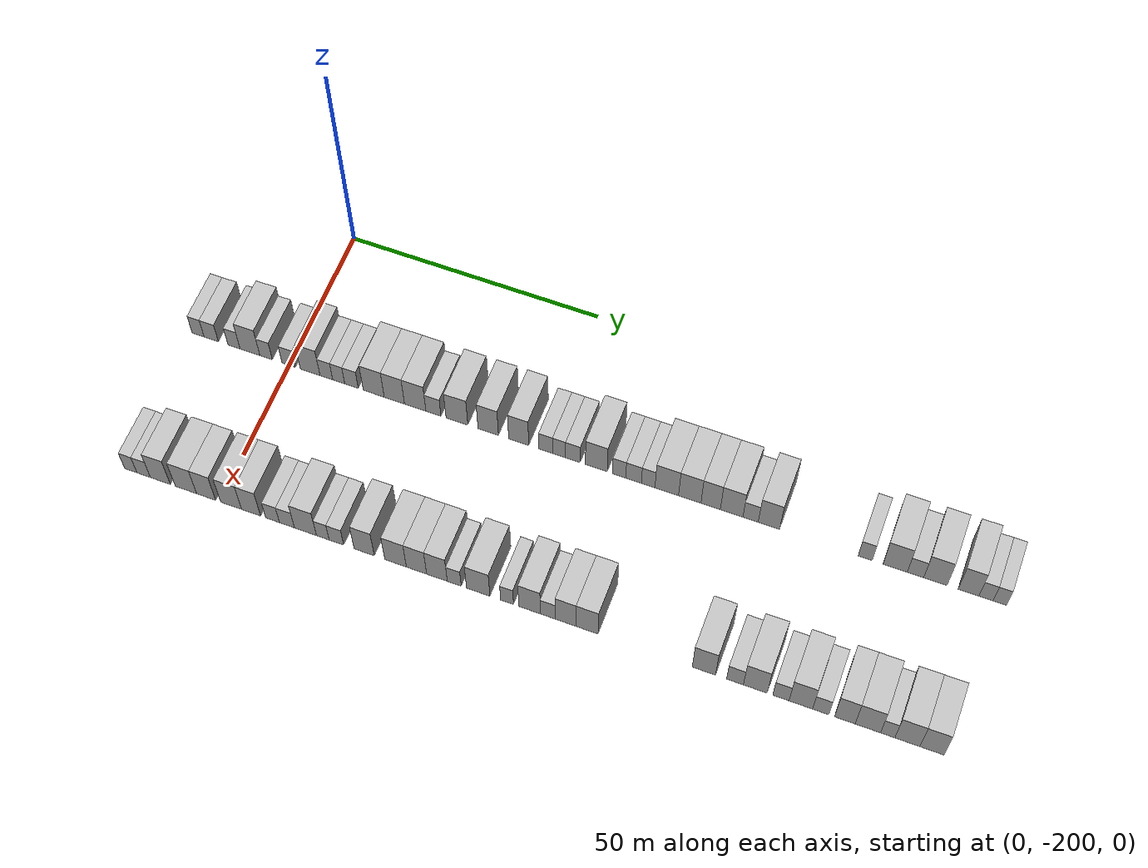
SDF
<sdf version="1.6">
 <world name="default">
  <model name="building_1">
   <static>1</static>
   <pose>25.0000 -218.7764 0 0.000000 0.000000 0.000000</pose>
   <link name="link">
    <pose>0 0 3.00 0 0 0</pose>
    <collision name="collision"><geometry><box><size>10.0000 2.4473 6.0000</size></box></geometry></collision>
    <visual name="visual">
     <cast_shadows>0</cast_shadows>
     <geometry><box><size>10.0000 2.4473 6.0000</size></box></geometry>
     <material>
      <script>
       <uri>model://HANNAS_wall/materials/scripts</uri>
       <uri>model://HANNAS_wall/materials/textures</uri>
       <name>vrc/HANNAS_wall</name>
      </script>
     </material>
    </visual>
   </link>
  </model>
  <model name="building_2">
   <static>1</static>
   <pose>25.0000 -216.0781 0 0.000000 0.000000 0.000000</pose>
   <link name="link">
    <pose>0 0 3.00 0 0 0</pose>
    <collision name="collision"><geometry><box><size>10.0000 2.9493 6.0000</size></box></geometry></collision>
    <visual name="visual">
     <cast_shadows>0</cast_shadows>
     <geometry><box><size>10.0000 2.9493 6.0000</size></box></geometry>
     <material>
      <script>
       <uri>model://HANNAS_wall/materials/scripts</uri>
       <uri>model://HANNAS_wall/materials/textures</uri>
       <name>vrc/HANNAS_wall</name>
      </script>
     </material>
    </visual>
   </link>
  </model>
  <model name="building_3">
   <static>1</static>
   <pose>25.0000 -211.3653 0 0.000000 0.000000 0.000000</pose>
   <link name="link">
    <pose>0 0 3.00 0 0 0</pose>
    <collision name="collision"><geometry><box><size>10.0000 2.4762 6.0000</size></box></geometry></collision>
    <visual name="visual">
     <cast_shadows>0</cast_shadows>
     <geometry><box><size>10.0000 2.4762 6.0000</size></box></geometry>
     <material>
      <script>
       <uri>model://HANNAS_wall/materials/scripts</uri>
       <uri>model://HANNAS_wall/materials/textures</uri>
       <name>vrc/HANNAS_wall</name>
      </script>
     </material>
    </visual>
   </link>
  </model>
  <model name="building_4">
   <static>1</static>
   <pose>25.0000 -208.0917 0 0.000000 0.000000 0.000000</pose>
   <link name="link">
    <pose>0 0 4.50 0 0 0</pose>
    <collision name="collision"><geometry><box><size>10.0000 4.0710 9.0000</size></box></geometry></collision>
    <visual name="visual">
     <cast_shadows>0</cast_shadows>
     <geometry><box><size>10.0000 4.0710 9.0000</size></box></geometry>
     <material>
      <script>
       <uri>model://HANNAS_wall/materials/scripts</uri>
       <uri>model://HANNAS_wall/materials/textures</uri>
       <name>vrc/HANNAS_wall</name>
      </script>
     </material>
    </visual>
   </link>
  </model>
  <model name="building_5">
   <static>1</static>
   <pose>25.0000 -204.7895 0 0.000000 0.000000 0.000000</pose>
   <link name="link">
    <pose>0 0 3.00 0 0 0</pose>
    <collision name="collision"><geometry><box><size>10.0000 2.5335 6.0000</size></box></geometry></collision>
    <visual name="visual">
     <cast_shadows>0</cast_shadows>
     <geometry><box><size>10.0000 2.5335 6.0000</size></box></geometry>
     <material>
      <script>
       <uri>model://HANNAS_wall/materials/scripts</uri>
       <uri>model://HANNAS_wall/materials/textures</uri>
       <name>vrc/HANNAS_wall</name>
      </script>
     </material>
    </visual>
   </link>
  </model>
  <model name="building_6">
   <static>1</static>
   <pose>25.0000 -200.1600 0 0.000000 0.000000 0.000000</pose>
   <link name="link">
    <pose>0 0 3.00 0 0 0</pose>
    <collision name="collision"><geometry><box><size>10.0000 2.7254 6.0000</size></box></geometry></collision>
    <visual name="visual">
     <cast_shadows>0</cast_shadows>
     <geometry><box><size>10.0000 2.7254 6.0000</size></box></geometry>
     <material>
      <script>
       <uri>model://HANNAS_wall/materials/scripts</uri>
       <uri>model://HANNAS_wall/materials/textures</uri>
       <name>vrc/HANNAS_wall</name>
      </script>
     </material>
    </visual>
   </link>
  </model>
  <model name="building_7">
   <static>1</static>
   <pose>25.0000 -195.8022 0 0.000000 0.000000 0.000000</pose>
   <link name="link">
    <pose>0 0 4.50 0 0 0</pose>
    <collision name="collision"><geometry><box><size>10.0000 3.9903 9.0000</size></box></geometry></collision>
    <visual name="visual">
     <cast_shadows>0</cast_shadows>
     <geometry><box><size>10.0000 3.9903 9.0000</size></box></geometry>
     <material>
      <script>
       <uri>model://HANNAS_wall/materials/scripts</uri>
       <uri>model://HANNAS_wall/materials/textures</uri>
       <name>vrc/HANNAS_wall</name>
      </script>
     </material>
    </visual>
   </link>
  </model>
  <model name="building_8">
   <static>1</static>
   <pose>25.0000 -192.5255 0 0.000000 0.000000 0.000000</pose>
   <link name="link">
    <pose>0 0 3.00 0 0 0</pose>
    <collision name="collision"><geometry><box><size>10.0000 2.5631 6.0000</size></box></geometry></collision>
    <visual name="visual">
     <cast_shadows>0</cast_shadows>
     <geometry><box><size>10.0000 2.5631 6.0000</size></box></geometry>
     <material>
      <script>
       <uri>model://HANNAS_wall/materials/scripts</uri>
       <uri>model://HANNAS_wall/materials/textures</uri>
       <name>vrc/HANNAS_wall</name>
      </script>
     </material>
    </visual>
   </link>
  </model>
  <model name="building_9">
   <static>1</static>
   <pose>25.0000 -190.0301 0 0.000000 0.000000 0.000000</pose>
   <link name="link">
    <pose>0 0 3.00 0 0 0</pose>
    <collision name="collision"><geometry><box><size>10.0000 2.4276 6.0000</size></box></geometry></collision>
    <visual name="visual">
     <cast_shadows>0</cast_shadows>
     <geometry><box><size>10.0000 2.4276 6.0000</size></box></geometry>
     <material>
      <script>
       <uri>model://HANNAS_wall/materials/scripts</uri>
       <uri>model://HANNAS_wall/materials/textures</uri>
       <name>vrc/HANNAS_wall</name>
      </script>
     </material>
    </visual>
   </link>
  </model>
  <model name="building_10">
   <static>1</static>
   <pose>25.0000 -187.4523 0 0.000000 0.000000 0.000000</pose>
   <link name="link">
    <pose>0 0 3.00 0 0 0</pose>
    <collision name="collision"><geometry><box><size>10.0000 2.7280 6.0000</size></box></geometry></collision>
    <visual name="visual">
     <cast_shadows>0</cast_shadows>
     <geometry><box><size>10.0000 2.7280 6.0000</size></box></geometry>
     <material>
      <script>
       <uri>model://HANNAS_wall/materials/scripts</uri>
       <uri>model://HANNAS_wall/materials/textures</uri>
       <name>vrc/HANNAS_wall</name>
      </script>
     </material>
    </visual>
   </link>
  </model>
  <model name="building_11">
   <static>1</static>
   <pose>25.0000 -182.9950 0 0.000000 0.000000 0.000000</pose>
   <link name="link">
    <pose>0 0 4.50 0 0 0</pose>
    <collision name="collision"><geometry><box><size>10.0000 4.1866 9.0000</size></box></geometry></collision>
    <visual name="visual">
     <cast_shadows>0</cast_shadows>
     <geometry><box><size>10.0000 4.1866 9.0000</size></box></geometry>
     <material>
      <script>
       <uri>model://HANNAS_wall/materials/scripts</uri>
       <uri>model://HANNAS_wall/materials/textures</uri>
       <name>vrc/HANNAS_wall</name>
      </script>
     </material>
    </visual>
   </link>
  </model>
  <model name="building_12">
   <static>1</static>
   <pose>25.0000 -178.8758 0 0.000000 0.000000 0.000000</pose>
   <link name="link">
    <pose>0 0 4.50 0 0 0</pose>
    <collision name="collision"><geometry><box><size>10.0000 4.0518 9.0000</size></box></geometry></collision>
    <visual name="visual">
     <cast_shadows>0</cast_shadows>
     <geometry><box><size>10.0000 4.0518 9.0000</size></box></geometry>
     <material>
      <script>
       <uri>model://HANNAS_wall/materials/scripts</uri>
       <uri>model://HANNAS_wall/materials/textures</uri>
       <name>vrc/HANNAS_wall</name>
      </script>
     </material>
    </visual>
   </link>
  </model>
  <model name="building_13">
   <static>1</static>
   <pose>25.0000 -174.7179 0 0.000000 0.000000 0.000000</pose>
   <link name="link">
    <pose>0 0 4.50 0 0 0</pose>
    <collision name="collision"><geometry><box><size>10.0000 4.2640 9.0000</size></box></geometry></collision>
    <visual name="visual">
     <cast_shadows>0</cast_shadows>
     <geometry><box><size>10.0000 4.2640 9.0000</size></box></geometry>
     <material>
      <script>
       <uri>model://HANNAS_wall/materials/scripts</uri>
       <uri>model://HANNAS_wall/materials/textures</uri>
       <name>vrc/HANNAS_wall</name>
      </script>
     </material>
    </visual>
   </link>
  </model>
  <model name="building_14">
   <static>1</static>
   <pose>25.0000 -171.0963 0 0.000000 0.000000 0.000000</pose>
   <link name="link">
    <pose>0 0 3.00 0 0 0</pose>
    <collision name="collision"><geometry><box><size>10.0000 2.9792 6.0000</size></box></geometry></collision>
    <visual name="visual">
     <cast_shadows>0</cast_shadows>
     <geometry><box><size>10.0000 2.9792 6.0000</size></box></geometry>
     <material>
      <script>
       <uri>model://HANNAS_wall/materials/scripts</uri>
       <uri>model://HANNAS_wall/materials/textures</uri>
       <name>vrc/HANNAS_wall</name>
      </script>
     </material>
    </visual>
   </link>
  </model>
  <model name="building_15">
   <static>1</static>
   <pose>25.0000 -166.4477 0 0.000000 0.000000 0.000000</pose>
   <link name="link">
    <pose>0 0 4.50 0 0 0</pose>
    <collision name="collision"><geometry><box><size>10.0000 4.3180 9.0000</size></box></geometry></collision>
    <visual name="visual">
     <cast_shadows>0</cast_shadows>
     <geometry><box><size>10.0000 4.3180 9.0000</size></box></geometry>
     <material>
      <script>
       <uri>model://HANNAS_wall/materials/scripts</uri>
       <uri>model://HANNAS_wall/materials/textures</uri>
       <name>vrc/HANNAS_wall</name>
      </script>
     </material>
    </visual>
   </link>
  </model>
  <model name="building_16">
   <static>1</static>
   <pose>25.0000 -160.2883 0 0.000000 0.000000 0.000000</pose>
   <link name="link">
    <pose>0 0 4.50 0 0 0</pose>
    <collision name="collision"><geometry><box><size>10.0000 4.0009 9.0000</size></box></geometry></collision>
    <visual name="visual">
     <cast_shadows>0</cast_shadows>
     <geometry><box><size>10.0000 4.0009 9.0000</size></box></geometry>
     <material>
      <script>
       <uri>model://HANNAS_wall/materials/scripts</uri>
       <uri>model://HANNAS_wall/materials/textures</uri>
       <name>vrc/HANNAS_wall</name>
      </script>
     </material>
    </visual>
   </link>
  </model>
  <model name="building_17">
   <static>1</static>
   <pose>25.0000 -154.3326 0 0.000000 0.000000 0.000000</pose>
   <link name="link">
    <pose>0 0 4.50 0 0 0</pose>
    <collision name="collision"><geometry><box><size>10.0000 3.9105 9.0000</size></box></geometry></collision>
    <visual name="visual">
     <cast_shadows>0</cast_shadows>
     <geometry><box><size>10.0000 3.9105 9.0000</size></box></geometry>
     <material>
      <script>
       <uri>model://HANNAS_wall/materials/scripts</uri>
       <uri>model://HANNAS_wall/materials/textures</uri>
       <name>vrc/HANNAS_wall</name>
      </script>
     </material>
    </visual>
   </link>
  </model>
  <model name="building_18">
   <static>1</static>
   <pose>25.0000 -149.0490 0 0.000000 0.000000 0.000000</pose>
   <link name="link">
    <pose>0 0 3.00 0 0 0</pose>
    <collision name="collision"><geometry><box><size>10.0000 2.6568 6.0000</size></box></geometry></collision>
    <visual name="visual">
     <cast_shadows>0</cast_shadows>
     <geometry><box><size>10.0000 2.6568 6.0000</size></box></geometry>
     <material>
      <script>
       <uri>model://HANNAS_wall/materials/scripts</uri>
       <uri>model://HANNAS_wall/materials/textures</uri>
       <name>vrc/HANNAS_wall</name>
      </script>
     </material>
    </visual>
   </link>
  </model>
  <model name="building_19">
   <static>1</static>
   <pose>25.0000 -146.4753 0 0.000000 0.000000 0.000000</pose>
   <link name="link">
    <pose>0 0 3.00 0 0 0</pose>
    <collision name="collision"><geometry><box><size>10.0000 2.4906 6.0000</size></box></geometry></collision>
    <visual name="visual">
     <cast_shadows>0</cast_shadows>
     <geometry><box><size>10.0000 2.4906 6.0000</size></box></geometry>
     <material>
      <script>
       <uri>model://HANNAS_wall/materials/scripts</uri>
       <uri>model://HANNAS_wall/materials/textures</uri>
       <name>vrc/HANNAS_wall</name>
      </script>
     </material>
    </visual>
   </link>
  </model>
  <model name="building_20">
   <static>1</static>
   <pose>25.0000 -143.8111 0 0.000000 0.000000 0.000000</pose>
   <link name="link">
    <pose>0 0 3.00 0 0 0</pose>
    <collision name="collision"><geometry><box><size>10.0000 2.8379 6.0000</size></box></geometry></collision>
    <visual name="visual">
     <cast_shadows>0</cast_shadows>
     <geometry><box><size>10.0000 2.8379 6.0000</size></box></geometry>
     <material>
      <script>
       <uri>model://HANNAS_wall/materials/scripts</uri>
       <uri>model://HANNAS_wall/materials/textures</uri>
       <name>vrc/HANNAS_wall</name>
      </script>
     </material>
    </visual>
   </link>
  </model>
  <model name="building_21">
   <static>1</static>
   <pose>25.0000 -139.2930 0 0.000000 0.000000 0.000000</pose>
   <link name="link">
    <pose>0 0 4.50 0 0 0</pose>
    <collision name="collision"><geometry><box><size>10.0000 4.1983 9.0000</size></box></geometry></collision>
    <visual name="visual">
     <cast_shadows>0</cast_shadows>
     <geometry><box><size>10.0000 4.1983 9.0000</size></box></geometry>
     <material>
      <script>
       <uri>model://HANNAS_wall/materials/scripts</uri>
       <uri>model://HANNAS_wall/materials/textures</uri>
       <name>vrc/HANNAS_wall</name>
      </script>
     </material>
    </visual>
   </link>
  </model>
  <model name="building_22">
   <static>1</static>
   <pose>25.0000 -134.9228 0 0.000000 0.000000 0.000000</pose>
   <link name="link">
    <pose>0 0 3.00 0 0 0</pose>
    <collision name="collision"><geometry><box><size>10.0000 2.5419 6.0000</size></box></geometry></collision>
    <visual name="visual">
     <cast_shadows>0</cast_shadows>
     <geometry><box><size>10.0000 2.5419 6.0000</size></box></geometry>
     <material>
      <script>
       <uri>model://HANNAS_wall/materials/scripts</uri>
       <uri>model://HANNAS_wall/materials/textures</uri>
       <name>vrc/HANNAS_wall</name>
      </script>
     </material>
    </visual>
   </link>
  </model>
  <model name="building_23">
   <static>1</static>
   <pose>25.0000 -132.1581 0 0.000000 0.000000 0.000000</pose>
   <link name="link">
    <pose>0 0 3.00 0 0 0</pose>
    <collision name="collision"><geometry><box><size>10.0000 2.9876 6.0000</size></box></geometry></collision>
    <visual name="visual">
     <cast_shadows>0</cast_shadows>
     <geometry><box><size>10.0000 2.9876 6.0000</size></box></geometry>
     <material>
      <script>
       <uri>model://HANNAS_wall/materials/scripts</uri>
       <uri>model://HANNAS_wall/materials/textures</uri>
       <name>vrc/HANNAS_wall</name>
      </script>
     </material>
    </visual>
   </link>
  </model>
  <model name="building_24">
   <static>1</static>
   <pose>25.0000 -129.3684 0 0.000000 0.000000 0.000000</pose>
   <link name="link">
    <pose>0 0 3.00 0 0 0</pose>
    <collision name="collision"><geometry><box><size>10.0000 2.5917 6.0000</size></box></geometry></collision>
    <visual name="visual">
     <cast_shadows>0</cast_shadows>
     <geometry><box><size>10.0000 2.5917 6.0000</size></box></geometry>
     <material>
      <script>
       <uri>model://HANNAS_wall/materials/scripts</uri>
       <uri>model://HANNAS_wall/materials/textures</uri>
       <name>vrc/HANNAS_wall</name>
      </script>
     </material>
    </visual>
   </link>
  </model>
  <model name="building_25">
   <static>1</static>
   <pose>25.0000 -125.8287 0 0.000000 0.000000 0.000000</pose>
   <link name="link">
    <pose>0 0 4.50 0 0 0</pose>
    <collision name="collision"><geometry><box><size>10.0000 4.4878 9.0000</size></box></geometry></collision>
    <visual name="visual">
     <cast_shadows>0</cast_shadows>
     <geometry><box><size>10.0000 4.4878 9.0000</size></box></geometry>
     <material>
      <script>
       <uri>model://HANNAS_wall/materials/scripts</uri>
       <uri>model://HANNAS_wall/materials/textures</uri>
       <name>vrc/HANNAS_wall</name>
      </script>
     </material>
    </visual>
   </link>
  </model>
  <model name="building_26">
   <static>1</static>
   <pose>25.0000 -121.4633 0 0.000000 0.000000 0.000000</pose>
   <link name="link">
    <pose>0 0 4.50 0 0 0</pose>
    <collision name="collision"><geometry><box><size>10.0000 4.2430 9.0000</size></box></geometry></collision>
    <visual name="visual">
     <cast_shadows>0</cast_shadows>
     <geometry><box><size>10.0000 4.2430 9.0000</size></box></geometry>
     <material>
      <script>
       <uri>model://HANNAS_wall/materials/scripts</uri>
       <uri>model://HANNAS_wall/materials/textures</uri>
       <name>vrc/HANNAS_wall</name>
      </script>
     </material>
    </visual>
   </link>
  </model>
  <model name="building_27">
   <static>1</static>
   <pose>25.0000 -117.5171 0 0.000000 0.000000 0.000000</pose>
   <link name="link">
    <pose>0 0 4.50 0 0 0</pose>
    <collision name="collision"><geometry><box><size>10.0000 3.6493 9.0000</size></box></geometry></collision>
    <visual name="visual">
     <cast_shadows>0</cast_shadows>
     <geometry><box><size>10.0000 3.6493 9.0000</size></box></geometry>
     <material>
      <script>
       <uri>model://HANNAS_wall/materials/scripts</uri>
       <uri>model://HANNAS_wall/materials/textures</uri>
       <name>vrc/HANNAS_wall</name>
      </script>
     </material>
    </visual>
   </link>
  </model>
  <model name="building_28">
   <static>1</static>
   <pose>25.0000 -113.5755 0 0.000000 0.000000 0.000000</pose>
   <link name="link">
    <pose>0 0 4.50 0 0 0</pose>
    <collision name="collision"><geometry><box><size>10.0000 4.2339 9.0000</size></box></geometry></collision>
    <visual name="visual">
     <cast_shadows>0</cast_shadows>
     <geometry><box><size>10.0000 4.2339 9.0000</size></box></geometry>
     <material>
      <script>
       <uri>model://HANNAS_wall/materials/scripts</uri>
       <uri>model://HANNAS_wall/materials/textures</uri>
       <name>vrc/HANNAS_wall</name>
      </script>
     </material>
    </visual>
   </link>
  </model>
  <model name="building_29">
   <static>1</static>
   <pose>25.0000 -110.0233 0 0.000000 0.000000 0.000000</pose>
   <link name="link">
    <pose>0 0 3.00 0 0 0</pose>
    <collision name="collision"><geometry><box><size>10.0000 2.8705 6.0000</size></box></geometry></collision>
    <visual name="visual">
     <cast_shadows>0</cast_shadows>
     <geometry><box><size>10.0000 2.8705 6.0000</size></box></geometry>
     <material>
      <script>
       <uri>model://HANNAS_wall/materials/scripts</uri>
       <uri>model://HANNAS_wall/materials/textures</uri>
       <name>vrc/HANNAS_wall</name>
      </script>
     </material>
    </visual>
   </link>
  </model>
  <model name="building_30">
   <static>1</static>
   <pose>25.0000 -106.5987 0 0.000000 0.000000 0.000000</pose>
   <link name="link">
    <pose>0 0 4.50 0 0 0</pose>
    <collision name="collision"><geometry><box><size>10.0000 3.9787 9.0000</size></box></geometry></collision>
    <visual name="visual">
     <cast_shadows>0</cast_shadows>
     <geometry><box><size>10.0000 3.9787 9.0000</size></box></geometry>
     <material>
      <script>
       <uri>model://HANNAS_wall/materials/scripts</uri>
       <uri>model://HANNAS_wall/materials/textures</uri>
       <name>vrc/HANNAS_wall</name>
      </script>
     </material>
    </visual>
   </link>
  </model>
  <model name="building_31">
   <static>1</static>
   <pose>25.0000 -88.7700 0 0.000000 0.000000 0.000000</pose>
   <link name="link">
    <pose>0 0 3.00 0 0 0</pose>
    <collision name="collision"><geometry><box><size>10.0000 2.5595 6.0000</size></box></geometry></collision>
    <visual name="visual">
     <cast_shadows>0</cast_shadows>
     <geometry><box><size>10.0000 2.5595 6.0000</size></box></geometry>
     <material>
      <script>
       <uri>model://HANNAS_wall/materials/scripts</uri>
       <uri>model://HANNAS_wall/materials/textures</uri>
       <name>vrc/HANNAS_wall</name>
      </script>
     </material>
    </visual>
   </link>
  </model>
  <model name="building_32">
   <static>1</static>
   <pose>25.0000 -83.2919 0 0.000000 0.000000 0.000000</pose>
   <link name="link">
    <pose>0 0 4.50 0 0 0</pose>
    <collision name="collision"><geometry><box><size>10.0000 4.3967 9.0000</size></box></geometry></collision>
    <visual name="visual">
     <cast_shadows>0</cast_shadows>
     <geometry><box><size>10.0000 4.3967 9.0000</size></box></geometry>
     <material>
      <script>
       <uri>model://HANNAS_wall/materials/scripts</uri>
       <uri>model://HANNAS_wall/materials/textures</uri>
       <name>vrc/HANNAS_wall</name>
      </script>
     </material>
    </visual>
   </link>
  </model>
  <model name="building_33">
   <static>1</static>
   <pose>25.0000 -79.5951 0 0.000000 0.000000 0.000000</pose>
   <link name="link">
    <pose>0 0 3.00 0 0 0</pose>
    <collision name="collision"><geometry><box><size>10.0000 2.9969 6.0000</size></box></geometry></collision>
    <visual name="visual">
     <cast_shadows>0</cast_shadows>
     <geometry><box><size>10.0000 2.9969 6.0000</size></box></geometry>
     <material>
      <script>
       <uri>model://HANNAS_wall/materials/scripts</uri>
       <uri>model://HANNAS_wall/materials/textures</uri>
       <name>vrc/HANNAS_wall</name>
      </script>
     </material>
    </visual>
   </link>
  </model>
  <model name="building_34">
   <static>1</static>
   <pose>25.0000 -75.9848 0 0.000000 0.000000 0.000000</pose>
   <link name="link">
    <pose>0 0 4.50 0 0 0</pose>
    <collision name="collision"><geometry><box><size>10.0000 4.2237 9.0000</size></box></geometry></collision>
    <visual name="visual">
     <cast_shadows>0</cast_shadows>
     <geometry><box><size>10.0000 4.2237 9.0000</size></box></geometry>
     <material>
      <script>
       <uri>model://HANNAS_wall/materials/scripts</uri>
       <uri>model://HANNAS_wall/materials/textures</uri>
       <name>vrc/HANNAS_wall</name>
      </script>
     </material>
    </visual>
   </link>
  </model>
  <model name="building_35">
   <static>1</static>
   <pose>25.0000 -70.0008 0 0.000000 0.000000 0.000000</pose>
   <link name="link">
    <pose>0 0 4.50 0 0 0</pose>
    <collision name="collision"><geometry><box><size>10.0000 3.7443 9.0000</size></box></geometry></collision>
    <visual name="visual">
     <cast_shadows>0</cast_shadows>
     <geometry><box><size>10.0000 3.7443 9.0000</size></box></geometry>
     <material>
      <script>
       <uri>model://HANNAS_wall/materials/scripts</uri>
       <uri>model://HANNAS_wall/materials/textures</uri>
       <name>vrc/HANNAS_wall</name>
      </script>
     </material>
    </visual>
   </link>
  </model>
  <model name="building_36">
   <static>1</static>
   <pose>25.0000 -66.8665 0 0.000000 0.000000 0.000000</pose>
   <link name="link">
    <pose>0 0 3.00 0 0 0</pose>
    <collision name="collision"><geometry><box><size>10.0000 2.5242 6.0000</size></box></geometry></collision>
    <visual name="visual">
     <cast_shadows>0</cast_shadows>
     <geometry><box><size>10.0000 2.5242 6.0000</size></box></geometry>
     <material>
      <script>
       <uri>model://HANNAS_wall/materials/scripts</uri>
       <uri>model://HANNAS_wall/materials/textures</uri>
       <name>vrc/HANNAS_wall</name>
      </script>
     </material>
    </visual>
   </link>
  </model>
  <model name="building_37">
   <static>1</static>
   <pose>25.0000 -64.3903 0 0.000000 0.000000 0.000000</pose>
   <link name="link">
    <pose>0 0 3.00 0 0 0</pose>
    <collision name="collision"><geometry><box><size>10.0000 2.4282 6.0000</size></box></geometry></collision>
    <visual name="visual">
     <cast_shadows>0</cast_shadows>
     <geometry><box><size>10.0000 2.4282 6.0000</size></box></geometry>
     <material>
      <script>
       <uri>model://HANNAS_wall/materials/scripts</uri>
       <uri>model://HANNAS_wall/materials/textures</uri>
       <name>vrc/HANNAS_wall</name>
      </script>
     </material>
    </visual>
   </link>
  </model>
  <model name="building_111">
   <static>1</static>
   <pose>55.0000 -217.7688 0 0.000000 0.000000 0.000000</pose>
   <link name="link">
    <pose>0 0 3.00 0 0 0</pose>
    <collision name="collision"><geometry><box><size>10.0000 2.4624 6.0000</size></box></geometry></collision>
    <visual name="visual">
     <cast_shadows>0</cast_shadows>
     <geometry><box><size>10.0000 2.4624 6.0000</size></box></geometry>
     <material>
      <script>
       <uri>model://HANNAS_wall/materials/scripts</uri>
       <uri>model://HANNAS_wall/materials/textures</uri>
       <name>vrc/HANNAS_wall</name>
      </script>
     </material>
    </visual>
   </link>
  </model>
  <model name="building_112">
   <static>1</static>
   <pose>55.0000 -215.1887 0 0.000000 0.000000 0.000000</pose>
   <link name="link">
    <pose>0 0 3.00 0 0 0</pose>
    <collision name="collision"><geometry><box><size>10.0000 2.6976 6.0000</size></box></geometry></collision>
    <visual name="visual">
     <cast_shadows>0</cast_shadows>
     <geometry><box><size>10.0000 2.6976 6.0000</size></box></geometry>
     <material>
      <script>
       <uri>model://HANNAS_wall/materials/scripts</uri>
       <uri>model://HANNAS_wall/materials/textures</uri>
       <name>vrc/HANNAS_wall</name>
      </script>
     </material>
    </visual>
   </link>
  </model>
  <model name="building_113">
   <static>1</static>
   <pose>55.0000 -211.8523 0 0.000000 0.000000 0.000000</pose>
   <link name="link">
    <pose>0 0 4.50 0 0 0</pose>
    <collision name="collision"><geometry><box><size>10.0000 3.9752 9.0000</size></box></geometry></collision>
    <visual name="visual">
     <cast_shadows>0</cast_shadows>
     <geometry><box><size>10.0000 3.9752 9.0000</size></box></geometry>
     <material>
      <script>
       <uri>model://HANNAS_wall/materials/scripts</uri>
       <uri>model://HANNAS_wall/materials/textures</uri>
       <name>vrc/HANNAS_wall</name>
      </script>
     </material>
    </visual>
   </link>
  </model>
  <model name="building_114">
   <static>1</static>
   <pose>55.0000 -206.7468 0 0.000000 0.000000 0.000000</pose>
   <link name="link">
    <pose>0 0 4.50 0 0 0</pose>
    <collision name="collision"><geometry><box><size>10.0000 4.2358 9.0000</size></box></geometry></collision>
    <visual name="visual">
     <cast_shadows>0</cast_shadows>
     <geometry><box><size>10.0000 4.2358 9.0000</size></box></geometry>
     <material>
      <script>
       <uri>model://HANNAS_wall/materials/scripts</uri>
       <uri>model://HANNAS_wall/materials/textures</uri>
       <name>vrc/HANNAS_wall</name>
      </script>
     </material>
    </visual>
   </link>
  </model>
  <model name="building_115">
   <static>1</static>
   <pose>55.0000 -202.7468 0 0.000000 0.000000 0.000000</pose>
   <link name="link">
    <pose>0 0 4.50 0 0 0</pose>
    <collision name="collision"><geometry><box><size>10.0000 3.7641 9.0000</size></box></geometry></collision>
    <visual name="visual">
     <cast_shadows>0</cast_shadows>
     <geometry><box><size>10.0000 3.7641 9.0000</size></box></geometry>
     <material>
      <script>
       <uri>model://HANNAS_wall/materials/scripts</uri>
       <uri>model://HANNAS_wall/materials/textures</uri>
       <name>vrc/HANNAS_wall</name>
      </script>
     </material>
    </visual>
   </link>
  </model>
  <model name="building_116">
   <static>1</static>
   <pose>55.0000 -197.8042 0 0.000000 0.000000 0.000000</pose>
   <link name="link">
    <pose>0 0 4.50 0 0 0</pose>
    <collision name="collision"><geometry><box><size>10.0000 4.1212 9.0000</size></box></geometry></collision>
    <visual name="visual">
     <cast_shadows>0</cast_shadows>
     <geometry><box><size>10.0000 4.1212 9.0000</size></box></geometry>
     <material>
      <script>
       <uri>model://HANNAS_wall/materials/scripts</uri>
       <uri>model://HANNAS_wall/materials/textures</uri>
       <name>vrc/HANNAS_wall</name>
      </script>
     </material>
    </visual>
   </link>
  </model>
  <model name="building_117">
   <static>1</static>
   <pose>55.0000 -193.8774 0 0.000000 0.000000 0.000000</pose>
   <link name="link">
    <pose>0 0 4.50 0 0 0</pose>
    <collision name="collision"><geometry><box><size>10.0000 3.7323 9.0000</size></box></geometry></collision>
    <visual name="visual">
     <cast_shadows>0</cast_shadows>
     <geometry><box><size>10.0000 3.7323 9.0000</size></box></geometry>
     <material>
      <script>
       <uri>model://HANNAS_wall/materials/scripts</uri>
       <uri>model://HANNAS_wall/materials/textures</uri>
       <name>vrc/HANNAS_wall</name>
      </script>
     </material>
    </visual>
   </link>
  </model>
  <model name="building_118">
   <static>1</static>
   <pose>55.0000 -189.6666 0 0.000000 0.000000 0.000000</pose>
   <link name="link">
    <pose>0 0 3.00 0 0 0</pose>
    <collision name="collision"><geometry><box><size>10.0000 2.6895 6.0000</size></box></geometry></collision>
    <visual name="visual">
     <cast_shadows>0</cast_shadows>
     <geometry><box><size>10.0000 2.6895 6.0000</size></box></geometry>
     <material>
      <script>
       <uri>model://HANNAS_wall/materials/scripts</uri>
       <uri>model://HANNAS_wall/materials/textures</uri>
       <name>vrc/HANNAS_wall</name>
      </script>
     </material>
    </visual>
   </link>
  </model>
  <model name="building_119">
   <static>1</static>
   <pose>55.0000 -186.8607 0 0.000000 0.000000 0.000000</pose>
   <link name="link">
    <pose>0 0 3.00 0 0 0</pose>
    <collision name="collision"><geometry><box><size>10.0000 2.9223 6.0000</size></box></geometry></collision>
    <visual name="visual">
     <cast_shadows>0</cast_shadows>
     <geometry><box><size>10.0000 2.9223 6.0000</size></box></geometry>
     <material>
      <script>
       <uri>model://HANNAS_wall/materials/scripts</uri>
       <uri>model://HANNAS_wall/materials/textures</uri>
       <name>vrc/HANNAS_wall</name>
      </script>
     </material>
    </visual>
   </link>
  </model>
  <model name="building_120">
   <static>1</static>
   <pose>55.0000 -183.2614 0 0.000000 0.000000 0.000000</pose>
   <link name="link">
    <pose>0 0 4.50 0 0 0</pose>
    <collision name="collision"><geometry><box><size>10.0000 4.2763 9.0000</size></box></geometry></collision>
    <visual name="visual">
     <cast_shadows>0</cast_shadows>
     <geometry><box><size>10.0000 4.2763 9.0000</size></box></geometry>
     <material>
      <script>
       <uri>model://HANNAS_wall/materials/scripts</uri>
       <uri>model://HANNAS_wall/materials/textures</uri>
       <name>vrc/HANNAS_wall</name>
      </script>
     </material>
    </visual>
   </link>
  </model>
  <model name="building_121">
   <static>1</static>
   <pose>55.0000 -179.8932 0 0.000000 0.000000 0.000000</pose>
   <link name="link">
    <pose>0 0 3.00 0 0 0</pose>
    <collision name="collision"><geometry><box><size>10.0000 2.4601 6.0000</size></box></geometry></collision>
    <visual name="visual">
     <cast_shadows>0</cast_shadows>
     <geometry><box><size>10.0000 2.4601 6.0000</size></box></geometry>
     <material>
      <script>
       <uri>model://HANNAS_wall/materials/scripts</uri>
       <uri>model://HANNAS_wall/materials/textures</uri>
       <name>vrc/HANNAS_wall</name>
      </script>
     </material>
    </visual>
   </link>
  </model>
  <model name="building_122">
   <static>1</static>
   <pose>55.0000 -177.2591 0 0.000000 0.000000 0.000000</pose>
   <link name="link">
    <pose>0 0 3.00 0 0 0</pose>
    <collision name="collision"><geometry><box><size>10.0000 2.8082 6.0000</size></box></geometry></collision>
    <visual name="visual">
     <cast_shadows>0</cast_shadows>
     <geometry><box><size>10.0000 2.8082 6.0000</size></box></geometry>
     <material>
      <script>
       <uri>model://HANNAS_wall/materials/scripts</uri>
       <uri>model://HANNAS_wall/materials/textures</uri>
       <name>vrc/HANNAS_wall</name>
      </script>
     </material>
    </visual>
   </link>
  </model>
  <model name="building_123">
   <static>1</static>
   <pose>55.0000 -171.9164 0 0.000000 0.000000 0.000000</pose>
   <link name="link">
    <pose>0 0 4.50 0 0 0</pose>
    <collision name="collision"><geometry><box><size>10.0000 3.8772 9.0000</size></box></geometry></collision>
    <visual name="visual">
     <cast_shadows>0</cast_shadows>
     <geometry><box><size>10.0000 3.8772 9.0000</size></box></geometry>
     <material>
      <script>
       <uri>model://HANNAS_wall/materials/scripts</uri>
       <uri>model://HANNAS_wall/materials/textures</uri>
       <name>vrc/HANNAS_wall</name>
      </script>
     </material>
    </visual>
   </link>
  </model>
  <model name="building_124">
   <static>1</static>
   <pose>55.0000 -165.9134 0 0.000000 0.000000 0.000000</pose>
   <link name="link">
    <pose>0 0 4.50 0 0 0</pose>
    <collision name="collision"><geometry><box><size>10.0000 4.1288 9.0000</size></box></geometry></collision>
    <visual name="visual">
     <cast_shadows>0</cast_shadows>
     <geometry><box><size>10.0000 4.1288 9.0000</size></box></geometry>
     <material>
      <script>
       <uri>model://HANNAS_wall/materials/scripts</uri>
       <uri>model://HANNAS_wall/materials/textures</uri>
       <name>vrc/HANNAS_wall</name>
      </script>
     </material>
    </visual>
   </link>
  </model>
  <model name="building_125">
   <static>1</static>
   <pose>55.0000 -161.9158 0 0.000000 0.000000 0.000000</pose>
   <link name="link">
    <pose>0 0 4.50 0 0 0</pose>
    <collision name="collision"><geometry><box><size>10.0000 3.8663 9.0000</size></box></geometry></collision>
    <visual name="visual">
     <cast_shadows>0</cast_shadows>
     <geometry><box><size>10.0000 3.8663 9.0000</size></box></geometry>
     <material>
      <script>
       <uri>model://HANNAS_wall/materials/scripts</uri>
       <uri>model://HANNAS_wall/materials/textures</uri>
       <name>vrc/HANNAS_wall</name>
      </script>
     </material>
    </visual>
   </link>
  </model>
  <model name="building_126">
   <static>1</static>
   <pose>55.0000 -158.0283 0 0.000000 0.000000 0.000000</pose>
   <link name="link">
    <pose>0 0 4.50 0 0 0</pose>
    <collision name="collision"><geometry><box><size>10.0000 3.9086 9.0000</size></box></geometry></collision>
    <visual name="visual">
     <cast_shadows>0</cast_shadows>
     <geometry><box><size>10.0000 3.9086 9.0000</size></box></geometry>
     <material>
      <script>
       <uri>model://HANNAS_wall/materials/scripts</uri>
       <uri>model://HANNAS_wall/materials/textures</uri>
       <name>vrc/HANNAS_wall</name>
      </script>
     </material>
    </visual>
   </link>
  </model>
  <model name="building_127">
   <static>1</static>
   <pose>55.0000 -154.7609 0 0.000000 0.000000 0.000000</pose>
   <link name="link">
    <pose>0 0 3.00 0 0 0</pose>
    <collision name="collision"><geometry><box><size>10.0000 2.6262 6.0000</size></box></geometry></collision>
    <visual name="visual">
     <cast_shadows>0</cast_shadows>
     <geometry><box><size>10.0000 2.6262 6.0000</size></box></geometry>
     <material>
      <script>
       <uri>model://HANNAS_wall/materials/scripts</uri>
       <uri>model://HANNAS_wall/materials/textures</uri>
       <name>vrc/HANNAS_wall</name>
      </script>
     </material>
    </visual>
   </link>
  </model>
  <model name="building_128">
   <static>1</static>
   <pose>55.0000 -150.2460 0 0.000000 0.000000 0.000000</pose>
   <link name="link">
    <pose>0 0 4.50 0 0 0</pose>
    <collision name="collision"><geometry><box><size>10.0000 4.4034 9.0000</size></box></geometry></collision>
    <visual name="visual">
     <cast_shadows>0</cast_shadows>
     <geometry><box><size>10.0000 4.4034 9.0000</size></box></geometry>
     <material>
      <script>
       <uri>model://HANNAS_wall/materials/scripts</uri>
       <uri>model://HANNAS_wall/materials/textures</uri>
       <name>vrc/HANNAS_wall</name>
      </script>
     </material>
    </visual>
   </link>
  </model>
  <model name="building_129">
   <static>1</static>
   <pose>55.0000 -144.8384 0 0.000000 0.000000 0.000000</pose>
   <link name="link">
    <pose>0 0 3.00 0 0 0</pose>
    <collision name="collision"><geometry><box><size>10.0000 2.4118 6.0000</size></box></geometry></collision>
    <visual name="visual">
     <cast_shadows>0</cast_shadows>
     <geometry><box><size>10.0000 2.4118 6.0000</size></box></geometry>
     <material>
      <script>
       <uri>model://HANNAS_wall/materials/scripts</uri>
       <uri>model://HANNAS_wall/materials/textures</uri>
       <name>vrc/HANNAS_wall</name>
      </script>
     </material>
    </visual>
   </link>
  </model>
  <model name="building_130">
   <static>1</static>
   <pose>55.0000 -140.6237 0 0.000000 0.000000 0.000000</pose>
   <link name="link">
    <pose>0 0 4.50 0 0 0</pose>
    <collision name="collision"><geometry><box><size>10.0000 4.0175 9.0000</size></box></geometry></collision>
    <visual name="visual">
     <cast_shadows>0</cast_shadows>
     <geometry><box><size>10.0000 4.0175 9.0000</size></box></geometry>
     <material>
      <script>
       <uri>model://HANNAS_wall/materials/scripts</uri>
       <uri>model://HANNAS_wall/materials/textures</uri>
       <name>vrc/HANNAS_wall</name>
      </script>
     </material>
    </visual>
   </link>
  </model>
  <model name="building_131">
   <static>1</static>
   <pose>55.0000 -137.2293 0 0.000000 0.000000 0.000000</pose>
   <link name="link">
    <pose>0 0 3.00 0 0 0</pose>
    <collision name="collision"><geometry><box><size>10.0000 2.7714 6.0000</size></box></geometry></collision>
    <visual name="visual">
     <cast_shadows>0</cast_shadows>
     <geometry><box><size>10.0000 2.7714 6.0000</size></box></geometry>
     <material>
      <script>
       <uri>model://HANNAS_wall/materials/scripts</uri>
       <uri>model://HANNAS_wall/materials/textures</uri>
       <name>vrc/HANNAS_wall</name>
      </script>
     </material>
    </visual>
   </link>
  </model>
  <model name="building_132">
   <static>1</static>
   <pose>55.0000 -133.9419 0 0.000000 0.000000 0.000000</pose>
   <link name="link">
    <pose>0 0 4.50 0 0 0</pose>
    <collision name="collision"><geometry><box><size>10.0000 3.8034 9.0000</size></box></geometry></collision>
    <visual name="visual">
     <cast_shadows>0</cast_shadows>
     <geometry><box><size>10.0000 3.8034 9.0000</size></box></geometry>
     <material>
      <script>
       <uri>model://HANNAS_wall/materials/scripts</uri>
       <uri>model://HANNAS_wall/materials/textures</uri>
       <name>vrc/HANNAS_wall</name>
      </script>
     </material>
    </visual>
   </link>
  </model>
  <model name="building_133">
   <static>1</static>
   <pose>55.0000 -129.9944 0 0.000000 0.000000 0.000000</pose>
   <link name="link">
    <pose>0 0 4.50 0 0 0</pose>
    <collision name="collision"><geometry><box><size>10.0000 4.0916 9.0000</size></box></geometry></collision>
    <visual name="visual">
     <cast_shadows>0</cast_shadows>
     <geometry><box><size>10.0000 4.0916 9.0000</size></box></geometry>
     <material>
      <script>
       <uri>model://HANNAS_wall/materials/scripts</uri>
       <uri>model://HANNAS_wall/materials/textures</uri>
       <name>vrc/HANNAS_wall</name>
      </script>
     </material>
    </visual>
   </link>
  </model>
  <model name="building_134">
   <static>1</static>
   <pose>55.0000 -108.6495 0 0.000000 0.000000 0.000000</pose>
   <link name="link">
    <pose>0 0 4.50 0 0 0</pose>
    <collision name="collision"><geometry><box><size>10.0000 4.1994 9.0000</size></box></geometry></collision>
    <visual name="visual">
     <cast_shadows>0</cast_shadows>
     <geometry><box><size>10.0000 4.1994 9.0000</size></box></geometry>
     <material>
      <script>
       <uri>model://HANNAS_wall/materials/scripts</uri>
       <uri>model://HANNAS_wall/materials/textures</uri>
       <name>vrc/HANNAS_wall</name>
      </script>
     </material>
    </visual>
   </link>
  </model>
  <model name="building_135">
   <static>1</static>
   <pose>55.0000 -103.0517 0 0.000000 0.000000 0.000000</pose>
   <link name="link">
    <pose>0 0 3.00 0 0 0</pose>
    <collision name="collision"><geometry><box><size>10.0000 2.9961 6.0000</size></box></geometry></collision>
    <visual name="visual">
     <cast_shadows>0</cast_shadows>
     <geometry><box><size>10.0000 2.9961 6.0000</size></box></geometry>
     <material>
      <script>
       <uri>model://HANNAS_wall/materials/scripts</uri>
       <uri>model://HANNAS_wall/materials/textures</uri>
       <name>vrc/HANNAS_wall</name>
      </script>
     </material>
    </visual>
   </link>
  </model>
  <model name="building_136">
   <static>1</static>
   <pose>55.0000 -99.4226 0 0.000000 0.000000 0.000000</pose>
   <link name="link">
    <pose>0 0 4.50 0 0 0</pose>
    <collision name="collision"><geometry><box><size>10.0000 4.2621 9.0000</size></box></geometry></collision>
    <visual name="visual">
     <cast_shadows>0</cast_shadows>
     <geometry><box><size>10.0000 4.2621 9.0000</size></box></geometry>
     <material>
      <script>
       <uri>model://HANNAS_wall/materials/scripts</uri>
       <uri>model://HANNAS_wall/materials/textures</uri>
       <name>vrc/HANNAS_wall</name>
      </script>
     </material>
    </visual>
   </link>
  </model>
  <model name="building_137">
   <static>1</static>
   <pose>55.0000 -94.8352 0 0.000000 0.000000 0.000000</pose>
   <link name="link">
    <pose>0 0 3.00 0 0 0</pose>
    <collision name="collision"><geometry><box><size>10.0000 2.9128 6.0000</size></box></geometry></collision>
    <visual name="visual">
     <cast_shadows>0</cast_shadows>
     <geometry><box><size>10.0000 2.9128 6.0000</size></box></geometry>
     <material>
      <script>
       <uri>model://HANNAS_wall/materials/scripts</uri>
       <uri>model://HANNAS_wall/materials/textures</uri>
       <name>vrc/HANNAS_wall</name>
      </script>
     </material>
    </visual>
   </link>
  </model>
  <model name="building_138">
   <static>1</static>
   <pose>55.0000 -91.2881 0 0.000000 0.000000 0.000000</pose>
   <link name="link">
    <pose>0 0 4.50 0 0 0</pose>
    <collision name="collision"><geometry><box><size>10.0000 4.1813 9.0000</size></box></geometry></collision>
    <visual name="visual">
     <cast_shadows>0</cast_shadows>
     <geometry><box><size>10.0000 4.1813 9.0000</size></box></geometry>
     <material>
      <script>
       <uri>model://HANNAS_wall/materials/scripts</uri>
       <uri>model://HANNAS_wall/materials/textures</uri>
       <name>vrc/HANNAS_wall</name>
      </script>
     </material>
    </visual>
   </link>
  </model>
  <model name="building_139">
   <static>1</static>
   <pose>55.0000 -87.7635 0 0.000000 0.000000 0.000000</pose>
   <link name="link">
    <pose>0 0 3.00 0 0 0</pose>
    <collision name="collision"><geometry><box><size>10.0000 2.8680 6.0000</size></box></geometry></collision>
    <visual name="visual">
     <cast_shadows>0</cast_shadows>
     <geometry><box><size>10.0000 2.8680 6.0000</size></box></geometry>
     <material>
      <script>
       <uri>model://HANNAS_wall/materials/scripts</uri>
       <uri>model://HANNAS_wall/materials/textures</uri>
       <name>vrc/HANNAS_wall</name>
      </script>
     </material>
    </visual>
   </link>
  </model>
  <model name="building_140">
   <static>1</static>
   <pose>55.0000 -83.5151 0 0.000000 0.000000 0.000000</pose>
   <link name="link">
    <pose>0 0 4.50 0 0 0</pose>
    <collision name="collision"><geometry><box><size>10.0000 3.6287 9.0000</size></box></geometry></collision>
    <visual name="visual">
     <cast_shadows>0</cast_shadows>
     <geometry><box><size>10.0000 3.6287 9.0000</size></box></geometry>
     <material>
      <script>
       <uri>model://HANNAS_wall/materials/scripts</uri>
       <uri>model://HANNAS_wall/materials/textures</uri>
       <name>vrc/HANNAS_wall</name>
      </script>
     </material>
    </visual>
   </link>
  </model>
  <model name="building_141">
   <static>1</static>
   <pose>55.0000 -79.4785 0 0.000000 0.000000 0.000000</pose>
   <link name="link">
    <pose>0 0 4.50 0 0 0</pose>
    <collision name="collision"><geometry><box><size>10.0000 4.4445 9.0000</size></box></geometry></collision>
    <visual name="visual">
     <cast_shadows>0</cast_shadows>
     <geometry><box><size>10.0000 4.4445 9.0000</size></box></geometry>
     <material>
      <script>
       <uri>model://HANNAS_wall/materials/scripts</uri>
       <uri>model://HANNAS_wall/materials/textures</uri>
       <name>vrc/HANNAS_wall</name>
      </script>
     </material>
    </visual>
   </link>
  </model>
  <model name="building_142">
   <static>1</static>
   <pose>55.0000 -76.0003 0 0.000000 0.000000 0.000000</pose>
   <link name="link">
    <pose>0 0 3.00 0 0 0</pose>
    <collision name="collision"><geometry><box><size>10.0000 2.5119 6.0000</size></box></geometry></collision>
    <visual name="visual">
     <cast_shadows>0</cast_shadows>
     <geometry><box><size>10.0000 2.5119 6.0000</size></box></geometry>
     <material>
      <script>
       <uri>model://HANNAS_wall/materials/scripts</uri>
       <uri>model://HANNAS_wall/materials/textures</uri>
       <name>vrc/HANNAS_wall</name>
      </script>
     </material>
    </visual>
   </link>
  </model>
  <model name="building_143">
   <static>1</static>
   <pose>55.0000 -72.5652 0 0.000000 0.000000 0.000000</pose>
   <link name="link">
    <pose>0 0 4.50 0 0 0</pose>
    <collision name="collision"><geometry><box><size>10.0000 4.3583 9.0000</size></box></geometry></collision>
    <visual name="visual">
     <cast_shadows>0</cast_shadows>
     <geometry><box><size>10.0000 4.3583 9.0000</size></box></geometry>
     <material>
      <script>
       <uri>model://HANNAS_wall/materials/scripts</uri>
       <uri>model://HANNAS_wall/materials/textures</uri>
       <name>vrc/HANNAS_wall</name>
      </script>
     </material>
    </visual>
   </link>
  </model>
  <model name="building_144">
   <static>1</static>
   <pose>55.0000 -68.2932 0 0.000000 0.000000 0.000000</pose>
   <link name="link">
    <pose>0 0 4.50 0 0 0</pose>
    <collision name="collision"><geometry><box><size>10.0000 4.1857 9.0000</size></box></geometry></collision>
    <visual name="visual">
     <cast_shadows>0</cast_shadows>
     <geometry><box><size>10.0000 4.1857 9.0000</size></box></geometry>
     <material>
      <script>
       <uri>model://HANNAS_wall/materials/scripts</uri>
       <uri>model://HANNAS_wall/materials/textures</uri>
       <name>vrc/HANNAS_wall</name>
      </script>
     </material>
    </visual>
   </link>
  </model>
 </world>
</sdf>
